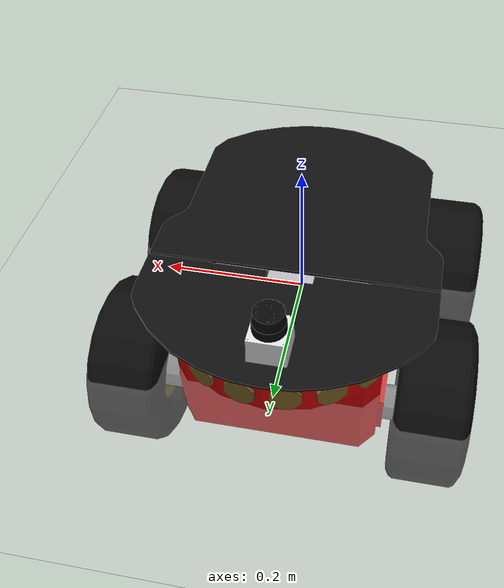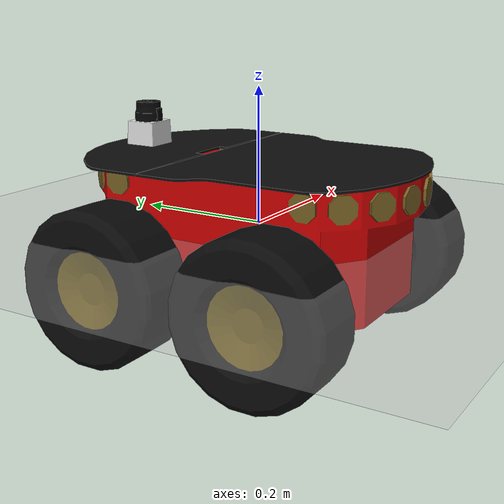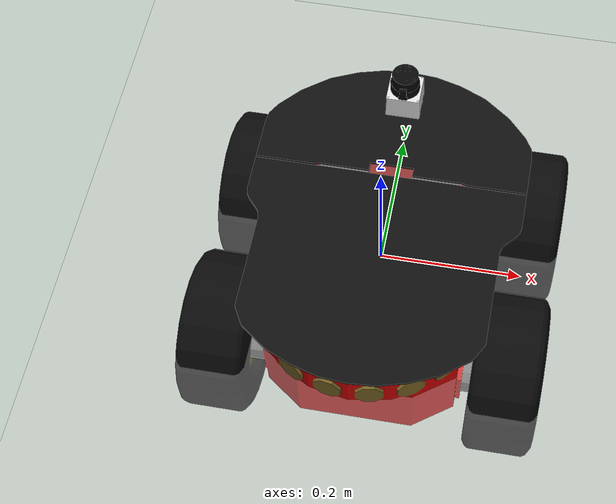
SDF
<sdf version="1.6">
 <world name="default">
  <light name="sun" type="directional">
   <pose>0 0 10 0 -0 0</pose>
   <diffuse>0.8 0.8 0.8 1</diffuse>
   <specular>0.1 0.1 0.1 1</specular>
   <attenuation>
    <range>1000</range>
    <constant>0.9</constant>
    <linear>0.01</linear>
    <quadratic>0.001</quadratic>
   </attenuation>
   <direction>-0.5 0.5 -1</direction>
  </light>
  <model name="ground_plane">
   <static>1</static>
   <link name="link">
    <collision name="collision">
     <geometry><plane><normal>0 0 1</normal><size>100 100</size></plane></geometry>
     <surface><friction><ode><mu>100</mu><mu2>50</mu2></ode></friction></surface>
    </collision>
    <visual name="visual">
     <cast_shadows>0</cast_shadows>
     <geometry><plane><normal>0 0 1</normal><size>100 100</size></plane></geometry>
     <material>
      <script><uri>file://media/materials/scripts/gazebo.material</uri><name>Gazebo/Grey</name></script>
     </material>
    </visual>
   </link>
  </model>
  <gravity>0 0 -9.8</gravity>
  <magnetic_field>6e-06 2.3e-05 -4.2e-05</magnetic_field>
  <atmosphere type="adiabatic"/>
  <physics name="default_physics" default="0" type="ode">
   <max_step_size>0.001</max_step_size>
   <real_time_factor>1</real_time_factor>
   <real_time_update_rate>1000</real_time_update_rate>
  </physics>
  <scene><ambient>0.4 0.4 0.4 1</ambient><background>0.7 0.7 0.7 1</background><shadows>1</shadows></scene>
  <spherical_coordinates>
   <surface_model>EARTH_WGS84</surface_model>
   <latitude_deg>0</latitude_deg>
   <longitude_deg>0</longitude_deg>
   <elevation>0</elevation>
   <heading_deg>0</heading_deg>
  </spherical_coordinates>
  <model name="Pioneer3AT">
   <pose>0 0 0.0 0 -0 1.57079</pose>
   <static>0</static>
   <link name="chassis">
    <inertial>
     <mass>14</mass>
     <inertia><ixx>0.3338</ixx><ixy>0</ixy><ixz>0</ixz><iyy>0.4783</iyy><iyz>0</iyz><izz>0.3338</izz></inertia>
    </inertial>
    <collision name="collision"><geometry><box><size>0.501 0.4 0.19</size></box></geometry></collision>
    <visual name="visual">
     <geometry><mesh><uri>model://pioneer3at/meshes/chassis.dae</uri></mesh></geometry>
    </visual>
    <velocity_decay><linear>0</linear><angular>0</angular></velocity_decay>
   </link>
   <link name="right_front_wheel">
    <pose>0.125 -0.201 -0.06 1.5707 -0 0</pose>
    <collision name="collision">
     <geometry><cylinder><radius>0.11</radius><length>0.075</length></cylinder></geometry>
     <surface><friction><ode><mu>1</mu><mu2>1</mu2><slip1>0.5</slip1><slip2>0</slip2></ode></friction></surface>
    </collision>
    <visual name="visual">
     <geometry><mesh><uri>model://pioneer3at/meshes/wheel.dae</uri></mesh></geometry>
    </visual>
    <velocity_decay><linear>0</linear><angular>0</angular></velocity_decay>
    <inertial>
     <inertia><ixx>1</ixx><ixy>0</ixy><ixz>0</ixz><iyy>1</iyy><iyz>0</iyz><izz>1</izz></inertia>
     <mass>1</mass>
    </inertial>
   </link>
   <link name="left_front_wheel">
    <pose>0.125 0.201 -0.06 1.5707 -0 0</pose>
    <collision name="collision">
     <geometry><cylinder><radius>0.11</radius><length>0.075</length></cylinder></geometry>
     <surface><friction><ode><mu>1</mu><mu2>1</mu2><slip1>0.5</slip1><slip2>0</slip2></ode></friction></surface>
    </collision>
    <visual name="visual">
     <geometry><mesh><uri>model://pioneer3at/meshes/wheel.dae</uri></mesh></geometry>
    </visual>
    <velocity_decay><linear>0</linear><angular>0</angular></velocity_decay>
    <inertial>
     <inertia><ixx>1</ixx><ixy>0</ixy><ixz>0</ixz><iyy>1</iyy><iyz>0</iyz><izz>1</izz></inertia>
     <mass>1</mass>
    </inertial>
   </link>
   <link name="right_rear_wheel">
    <pose>-0.125 -0.201 -0.06 1.5707 -0 0</pose>
    <collision name="collision">
     <geometry><cylinder><radius>0.11</radius><length>0.075</length></cylinder></geometry>
     <surface><friction><ode><mu>1</mu><mu2>1</mu2><slip1>0.5</slip1><slip2>0</slip2></ode></friction></surface>
    </collision>
    <visual name="visual">
     <geometry><mesh><uri>model://pioneer3at/meshes/wheel.dae</uri></mesh></geometry>
    </visual>
    <velocity_decay><linear>0</linear><angular>0</angular></velocity_decay>
    <inertial>
     <inertia><ixx>1</ixx><ixy>0</ixy><ixz>0</ixz><iyy>1</iyy><iyz>0</iyz><izz>1</izz></inertia>
     <mass>1</mass>
    </inertial>
   </link>
   <link name="left_rear_wheel">
    <pose>-0.125 0.201 -0.06 1.5707 -0 0</pose>
    <collision name="collision">
     <geometry><cylinder><radius>0.11</radius><length>0.075</length></cylinder></geometry>
     <surface><friction><ode><mu>1</mu><mu2>1</mu2><slip1>0.5</slip1><slip2>0</slip2></ode></friction></surface>
    </collision>
    <visual name="visual">
     <geometry><mesh><uri>model://pioneer3at/meshes/wheel.dae</uri></mesh></geometry>
    </visual>
    <velocity_decay><linear>0</linear><angular>0</angular></velocity_decay>
    <inertial>
     <inertia><ixx>1</ixx><ixy>0</ixy><ixz>0</ixz><iyy>1</iyy><iyz>0</iyz><izz>1</izz></inertia>
     <mass>1</mass>
    </inertial>
   </link>
   <joint name="right_front" type="revolute">
    <child>right_front_wheel</child>
    <parent>chassis</parent>
    <axis>
     <xyz>0 0 -1</xyz>
     <limit><lower>-1e+16</lower><upper>1e+16</upper></limit>
     <use_parent_model_frame>0</use_parent_model_frame>
     <dynamics><spring_reference>0</spring_reference><spring_stiffness>0</spring_stiffness></dynamics>
    </axis>
   </joint>
   <joint name="right_rear" type="revolute">
    <child>right_rear_wheel</child>
    <parent>chassis</parent>
    <axis>
     <xyz>0 0 -1</xyz>
     <limit><lower>-1e+16</lower><upper>1e+16</upper></limit>
     <use_parent_model_frame>0</use_parent_model_frame>
     <dynamics><spring_reference>0</spring_reference><spring_stiffness>0</spring_stiffness></dynamics>
    </axis>
   </joint>
   <joint name="left_front" type="revolute">
    <child>left_front_wheel</child>
    <parent>chassis</parent>
    <axis>
     <xyz>0 0 -1</xyz>
     <limit><lower>-1e+16</lower><upper>1e+16</upper></limit>
     <use_parent_model_frame>0</use_parent_model_frame>
     <dynamics><spring_reference>0</spring_reference><spring_stiffness>0</spring_stiffness></dynamics>
    </axis>
   </joint>
   <joint name="left_rear" type="revolute">
    <child>left_rear_wheel</child>
    <parent>chassis</parent>
    <axis>
     <xyz>0 0 -1</xyz>
     <limit><lower>-1e+16</lower><upper>1e+16</upper></limit>
     <use_parent_model_frame>0</use_parent_model_frame>
     <dynamics><spring_reference>0</spring_reference><spring_stiffness>0</spring_stiffness></dynamics>
    </axis>
   </joint>
   <link name="hokuyo::link">
    <inertial>
     <mass>0.1</mass>
     <inertia><ixx>1</ixx><ixy>0</ixy><ixz>0</ixz><iyy>1</iyy><iyz>0</iyz><izz>1</izz></inertia>
    </inertial>
    <visual name="visual"><geometry><mesh><uri>model://hokuyo/meshes/hokuyo.dae</uri></mesh></geometry></visual>
    <collision name="collision-base">
     <pose>0 0 -0.0145 0 -0 0</pose>
     <geometry><box><size>0.05 0.05 0.041</size></box></geometry>
    </collision>
    <collision name="collision-top">
     <pose>0 0 0.0205 0 -0 0</pose>
     <geometry><cylinder><radius>0.021</radius><length>0.029</length></cylinder></geometry>
    </collision>
    <sensor name="laser" type="ray">
     <pose>0.01 0 0.0175 0 -0 0</pose>
     <ray>
      <scan>
       <horizontal>
        <samples>100</samples>
        <resolution>1</resolution>
        <min_angle>-1.26889</min_angle>
        <max_angle>1.2689</max_angle>
       </horizontal>
      </scan>
      <range><min>0.08</min><max>5</max><resolution>0.01</resolution></range>
     </ray>
     <plugin name="laser" filename="libRayPlugin.so"/>
     <always_on>1</always_on>
     <update_rate>20</update_rate>
     <visualize>1</visualize>
     <plugin name="gazebo_ros_head_hokuyo_controller" filename="libgazebo_ros_laser.so">
      <topicName>/Pioneer3AT/laserscan</topicName>
      <frameName>Pioneer3AT::hokuyo::link</frameName>
     </plugin>
    </sensor>
    <velocity_decay><linear>0</linear><angular>0</angular></velocity_decay>
    <pose>0.2 0 0.13 0 -0 0</pose>
   </link>
   <joint name="hokuyo_joint" type="revolute">
    <child>hokuyo::link</child>
    <parent>chassis</parent>
    <axis>
     <xyz>0 0 1</xyz>
     <limit><upper>0</upper><lower>0</lower></limit>
     <use_parent_model_frame>0</use_parent_model_frame>
     <dynamics><spring_reference>0</spring_reference><spring_stiffness>0</spring_stiffness></dynamics>
    </axis>
   </joint>
   <plugin name="SkidSteerDrivePlugin" filename="libSkidSteerDrivePlugin.so"/>
   <link name="camera::link">
    <inertial>
     <mass>0.1</mass>
     <inertia><ixx>1</ixx><ixy>0</ixy><ixz>0</ixz><iyy>1</iyy><iyz>0</iyz><izz>1</izz></inertia>
    </inertial>
    <collision name="collision"><geometry><box><size>0.1 0.1 0.1</size></box></geometry></collision>
    <visual name="visual"><geometry><box><size>0.1 0.1 0.1</size></box></geometry></visual>
    <sensor name="camera" type="camera">
     <pose>0.01 0 0.3175 0 -0 0</pose>
     <camera name="__default__">
      <horizontal_fov>1.047</horizontal_fov>
      <image><width>320</width><height>240</height></image>
      <clip><near>0.1</near><far>100</far></clip>
     </camera>
     <plugin name="camera_controller" filename="libgazebo_ros_camera.so">
      <alwaysOn>true</alwaysOn>
      <updateRate>100.0</updateRate>
      <cameraName>Pioneer3AT/camera1</cameraName>
      <imageTopicName>image_raw</imageTopicName>
      <cameraInfoTopicName>camera_info</cameraInfoTopicName>
      <frameName>camera_link</frameName>
      <hackBaseline>0.07</hackBaseline>
      <distortionK1>0.0</distortionK1>
      <distortionK2>0.0</distortionK2>
      <distortionK3>0.0</distortionK3>
      <distortionT1>0.0</distortionT1>
      <distortionT2>0.0</distortionT2>
     </plugin>
     <visualize>1</visualize>
    </sensor>
   </link>
   <joint name="camera_joint" type="revolute">
    <child>camera::link</child>
    <parent>chassis</parent>
    <axis>
     <xyz>0 0 1</xyz>
     <limit><upper>0</upper><lower>0</lower></limit>
     <use_parent_model_frame>0</use_parent_model_frame>
     <dynamics><spring_reference>0</spring_reference><spring_stiffness>0</spring_stiffness></dynamics>
    </axis>
   </joint>
   <link name="bumper::link">
    <inertial>
     <mass>0.1</mass>
     <inertia><ixx>1</ixx><ixy>0</ixy><ixz>0</ixz><iyy>1</iyy><iyz>0</iyz><izz>1</izz></inertia>
    </inertial>
    <collision name="collision"><geometry><box><size>0.55 0.55 0.2</size></box></geometry></collision>
    <visual name="visual"><geometry><box><size>0.1 0.1 0.1</size></box></geometry></visual>
    <sensor name="contact_sensor" type="contact">
     <pose>0.0 0 0.25 0 -0 0</pose>
     <contact><collision>collision</collision></contact>
     <plugin name="bumper" filename="libgazebo_ros_bumper.so">
      <bumperTopicName>Pioneer3AT/contact_sensor</bumperTopicName>
      <frameName>world</frameName>
      <always_on>true</always_on>
      <update_rate>30.0</update_rate>
     </plugin>
     <visualize>1</visualize>
    </sensor>
   </link>
   <joint name="bumper_joint" type="revolute">
    <child>bumper::link</child>
    <parent>chassis</parent>
    <axis>
     <xyz>0 0 1</xyz>
     <limit><upper>0</upper><lower>0</lower></limit>
     <use_parent_model_frame>0</use_parent_model_frame>
     <dynamics><spring_reference>0</spring_reference><spring_stiffness>0</spring_stiffness></dynamics>
    </axis>
   </joint>
   <plugin name="skid_steer_drive_controller" filename="libgazebo_ros_skid_steer_drive.so">
    <updateRate>100.0</updateRate>
    <leftFrontJoint>left_front</leftFrontJoint>
    <rightFrontJoint>right_front</rightFrontJoint>
    <rightRearJoint>right_rear</rightRearJoint>
    <leftRearJoint>left_rear</leftRearJoint>
    <wheelSeparation>0.5</wheelSeparation>
    <wheelDiameter>0.22</wheelDiameter>
    <commandTopic>/Pioneer3AT/cmd_vel</commandTopic>
    <torque>5.</torque>
   </plugin>
  </model>
 </world>
</sdf>
